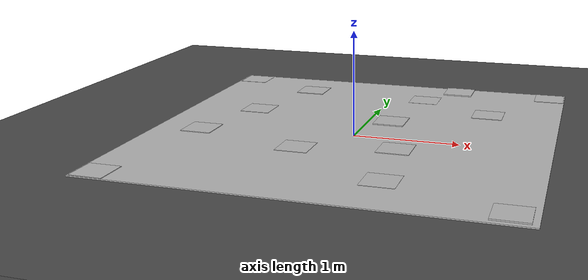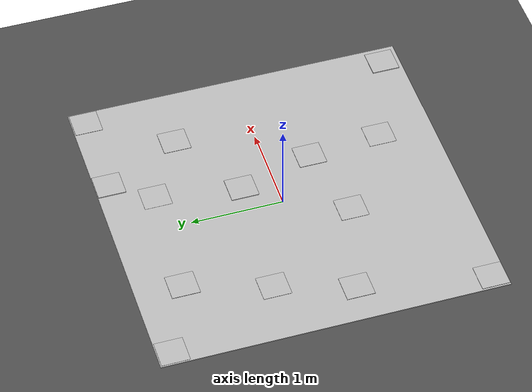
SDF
<sdf version="1.6">
 <world name="default">
  <light name="sun" type="directional">
   <pose>0 0 10 0 -0 0</pose>
   <diffuse>0.8 0.8 0.8 1</diffuse>
   <specular>0.2 0.2 0.2 1</specular>
   <attenuation>
    <range>1000</range>
    <constant>0.9</constant>
    <linear>0.01</linear>
    <quadratic>0.001</quadratic>
   </attenuation>
   <direction>-0.5 0.1 -0.9</direction>
  </light>
  <model name="ground_plane">
   <static>1</static>
   <link name="link">
    <collision name="collision">
     <geometry><plane><normal>0 0 1</normal><size>100 100</size></plane></geometry>
     <surface>
      <contact><collide_bitmask>65535</collide_bitmask></contact>
      <friction><ode><mu>100</mu><mu2>50</mu2></ode></friction>
     </surface>
    </collision>
    <visual name="visual">
     <cast_shadows>0</cast_shadows>
     <geometry><plane><normal>0 0 1</normal><size>100 100</size></plane></geometry>
     <material>
      <script><uri>file://media/materials/scripts/gazebo.material</uri><name>Gazebo/Grey</name></script>
     </material>
    </visual>
   </link>
  </model>
  <model name="asphalt_plane">
   <static>1</static>
   <link name="link">
    <collision name="collision"><geometry><box><size>20 20 0.1</size></box></geometry></collision>
    <visual name="visual">
     <cast_shadows>0</cast_shadows>
     <geometry><box><size>20 20 0.1</size></box></geometry>
     <material>
      <script>
       <uri>model://asphalt_plane/materials/scripts</uri>
       <uri>model://asphalt_plane/materials/textures</uri>
       <name>vrc/asphalt</name>
      </script>
     </material>
    </visual>
   </link>
  </model>
  <model name="aruco_map_3000_3000">
   <static>1</static>
   <link name="link">
    <collision name="collision"><geometry><box><size>3.702 3.702 0.12</size></box></geometry></collision>
    <visual name="visual">
     <cast_shadows>0</cast_shadows>
     <geometry><box><size>3.702 3.702 0.12</size></box></geometry>
     <material>
      <script>
       <uri>model://aruco_map_3000_3000/materials/scripts</uri>
       <uri>model://aruco_map_3000_3000/materials/textures</uri>
       <name>aruco/Image</name>
      </script>
     </material>
    </visual>
   </link>
  </model>
  <physics name="default_physics" default="0" type="ode">
   <ode>
    <solver>
     <type>quick</type>
     <iters>10</iters>
     <sor>1.3</sor>
     <use_dynamic_moi_rescaling>0</use_dynamic_moi_rescaling>
    </solver>
    <constraints>
     <cfm>0</cfm>
     <erp>0.2</erp>
     <contact_max_correcting_vel>100</contact_max_correcting_vel>
     <contact_surface_layer>0.001</contact_surface_layer>
    </constraints>
   </ode>
   <max_step_size>0.004</max_step_size>
   <real_time_factor>1</real_time_factor>
   <real_time_update_rate>250</real_time_update_rate>
  </physics>
  <gravity>0 0 -9.8066</gravity>
  <magnetic_field>6e-06 2.3e-05 -4.2e-05</magnetic_field>
  <atmosphere type="adiabatic"/>
  <scene><ambient>0.4 0.4 0.4 1</ambient><background>0.7 0.7 0.7 1</background><shadows>1</shadows></scene>
  <spherical_coordinates>
   <surface_model>EARTH_WGS84</surface_model>
   <latitude_deg>0</latitude_deg>
   <longitude_deg>0</longitude_deg>
   <elevation>0</elevation>
   <heading_deg>0</heading_deg>
  </spherical_coordinates>
  <model name="seedQRCode">
   <static>1</static>
   <link name="link">
    <collision name="collision"><geometry><box><size>0.3 0.3 0.05</size></box></geometry></collision>
    <visual name="visual">
     <cast_shadows>0</cast_shadows>
     <geometry><box><size>0.3 0.3 0.05</size></box></geometry>
     <material>
      <script>
       <uri>model://seedQRCode/materials/scripts</uri>
       <uri>model://seedQRCode/materials/textures</uri>
       <name>seedQRCode/Image</name>
      </script>
     </material>
    </visual>
   </link>
   <pose>-1.68597 1.6896 0.037381 0 -0 0</pose>
  </model>
  <model name="yellowSquare">
   <static>1</static>
   <link name="link">
    <collision name="collision"><geometry><box><size>0.3 0.3 0.05</size></box></geometry></collision>
    <visual name="visual">
     <cast_shadows>0</cast_shadows>
     <geometry><box><size>0.3 0.3 0.05</size></box></geometry>
     <material>
      <script>
       <uri>model://yellowSquare/materials/scripts</uri>
       <uri>model://yellowSquare/materials/textures</uri>
       <name>yellowSquare/Image</name>
      </script>
     </material>
    </visual>
   </link>
   <pose>1.14728 0.860175 0.040151 0 -0 0</pose>
  </model>
  <model name="yellowSquare_0">
   <static>1</static>
   <link name="link">
    <collision name="collision"><geometry><box><size>0.3 0.3 0.05</size></box></geometry></collision>
    <visual name="visual">
     <cast_shadows>0</cast_shadows>
     <geometry><box><size>0.3 0.3 0.05</size></box></geometry>
     <material>
      <script>
       <uri>model://yellowSquare/materials/scripts</uri>
       <uri>model://yellowSquare/materials/textures</uri>
       <name>yellowSquare/Image</name>
      </script>
     </material>
    </visual>
   </link>
   <pose>0.419442 1.27448 0.036074 0 -0 0</pose>
  </model>
  <model name="blueSquare">
   <static>1</static>
   <link name="link">
    <collision name="collision"><geometry><box><size>0.3 0.3 0.05</size></box></geometry></collision>
    <visual name="visual">
     <cast_shadows>0</cast_shadows>
     <geometry><box><size>0.3 0.3 0.05</size></box></geometry>
     <material>
      <script>
       <uri>model://blueSquare/materials/scripts</uri>
       <uri>model://blueSquare/materials/textures</uri>
       <name>blueSquare/Image</name>
      </script>
     </material>
    </visual>
   </link>
   <pose>0.719013 1.69662 0.046656 0 -0 0</pose>
  </model>
  <model name="blueSquare_0">
   <static>1</static>
   <link name="link">
    <collision name="collision"><geometry><box><size>0.3 0.3 0.05</size></box></geometry></collision>
    <visual name="visual">
     <cast_shadows>0</cast_shadows>
     <geometry><box><size>0.3 0.3 0.05</size></box></geometry>
     <material>
      <script>
       <uri>model://blueSquare/materials/scripts</uri>
       <uri>model://blueSquare/materials/textures</uri>
       <name>blueSquare/Image</name>
      </script>
     </material>
    </visual>
   </link>
   <pose>0.268015 0.373852 0.045049 0 -0 0</pose>
  </model>
  <model name="brownSquare">
   <static>1</static>
   <link name="link">
    <collision name="collision"><geometry><box><size>0.3 0.3 0.05</size></box></geometry></collision>
    <visual name="visual">
     <cast_shadows>0</cast_shadows>
     <geometry><box><size>0.3 0.3 0.05</size></box></geometry>
     <material>
      <script>
       <uri>model://brownSquare/materials/scripts</uri>
       <uri>model://brownSquare/materials/textures</uri>
       <name>brownSquare/Image</name>
      </script>
     </material>
    </visual>
   </link>
   <pose>0.51431 -0.45365 0.041603 0 -0 0</pose>
  </model>
  <model name="blueSquare_1">
   <static>1</static>
   <link name="link">
    <collision name="collision"><geometry><box><size>0.3 0.3 0.05</size></box></geometry></collision>
    <visual name="visual">
     <cast_shadows>0</cast_shadows>
     <geometry><box><size>0.3 0.3 0.05</size></box></geometry>
     <material>
      <script>
       <uri>model://blueSquare/materials/scripts</uri>
       <uri>model://blueSquare/materials/textures</uri>
       <name>blueSquare/Image</name>
      </script>
     </material>
    </visual>
   </link>
   <pose>0.590778 -1.26038 0.038285 0 -0 0</pose>
  </model>
  <model name="greenCircle">
   <static>1</static>
   <link name="link">
    <collision name="collision"><geometry><box><size>0.3 0.3 0.05</size></box></geometry></collision>
    <visual name="visual">
     <cast_shadows>0</cast_shadows>
     <geometry><box><size>0.3 0.3 0.05</size></box></geometry>
     <material>
      <script>
       <uri>model://greenCircle/materials/scripts</uri>
       <uri>model://greenCircle/materials/textures</uri>
       <name>greenCircle/Image</name>
      </script>
     </material>
    </visual>
   </link>
   <pose>1.64811 -1.65563 0.046294 0 -0 0</pose>
  </model>
  <model name="yellowSquare_1">
   <static>1</static>
   <link name="link">
    <collision name="collision"><geometry><box><size>0.3 0.3 0.05</size></box></geometry></collision>
    <visual name="visual">
     <cast_shadows>0</cast_shadows>
     <geometry><box><size>0.3 0.3 0.05</size></box></geometry>
     <material>
      <script>
       <uri>model://yellowSquare/materials/scripts</uri>
       <uri>model://yellowSquare/materials/textures</uri>
       <name>yellowSquare/Image</name>
      </script>
     </material>
    </visual>
   </link>
   <pose>-1.40933 -0.340235 0.041601 0 -0 0</pose>
  </model>
  <model name="redSquare">
   <static>1</static>
   <link name="link">
    <collision name="collision"><geometry><box><size>0.3 0.3 0.05</size></box></geometry></collision>
    <visual name="visual">
     <cast_shadows>0</cast_shadows>
     <geometry><box><size>0.3 0.3 0.05</size></box></geometry>
     <material>
      <script>
       <uri>model://redSquare/materials/scripts</uri>
       <uri>model://redSquare/materials/textures</uri>
       <name>redSquare/Image</name>
      </script>
     </material>
    </visual>
   </link>
   <pose>-0.349327 -0.633986 0.039094 0 -0 0</pose>
  </model>
  <model name="blueCircle">
   <static>1</static>
   <link name="link">
    <collision name="collision"><geometry><box><size>0.3 0.3 0.05</size></box></geometry></collision>
    <visual name="visual">
     <cast_shadows>0</cast_shadows>
     <geometry><box><size>0.3 0.3 0.05</size></box></geometry>
     <material>
      <script>
       <uri>model://blueCircle/materials/scripts</uri>
       <uri>model://blueCircle/materials/textures</uri>
       <name>blueCircle/Image</name>
      </script>
     </material>
    </visual>
   </link>
   <pose>-1.68259 -1.69548 0.040934 0 -0 0</pose>
  </model>
  <model name="greenSquare">
   <static>1</static>
   <link name="link">
    <collision name="collision"><geometry><box><size>0.3 0.3 0.05</size></box></geometry></collision>
    <visual name="visual">
     <cast_shadows>0</cast_shadows>
     <geometry><box><size>0.3 0.3 0.05</size></box></geometry>
     <material>
      <script>
       <uri>model://greenSquare/materials/scripts</uri>
       <uri>model://greenSquare/materials/textures</uri>
       <name>greenSquare/Image</name>
      </script>
     </material>
    </visual>
   </link>
   <pose>-1.15218 0.464136 0.039035 0 -0 0</pose>
  </model>
  <model name="blueSquare_2">
   <static>1</static>
   <link name="link">
    <collision name="collision"><geometry><box><size>0.3 0.3 0.05</size></box></geometry></collision>
    <visual name="visual">
     <cast_shadows>0</cast_shadows>
     <geometry><box><size>0.3 0.3 0.05</size></box></geometry>
     <material>
      <script>
       <uri>model://blueSquare/materials/scripts</uri>
       <uri>model://blueSquare/materials/textures</uri>
       <name>blueSquare/Image</name>
      </script>
     </material>
    </visual>
   </link>
   <pose>-0.863323 1.34463 0.041569 0 -0 0</pose>
  </model>
  <model name="yellowCircle">
   <static>1</static>
   <link name="link">
    <collision name="collision"><geometry><box><size>0.3 0.3 0.05</size></box></geometry></collision>
    <visual name="visual">
     <cast_shadows>0</cast_shadows>
     <geometry><box><size>0.3 0.3 0.05</size></box></geometry>
     <material>
      <script>
       <uri>model://yellowCircle/materials/scripts</uri>
       <uri>model://yellowCircle/materials/textures</uri>
       <name>yellowCircle/Image</name>
      </script>
     </material>
    </visual>
   </link>
   <pose>1.69272 1.69089 0.039547 0 -0 0</pose>
  </model>
 </world>
</sdf>
